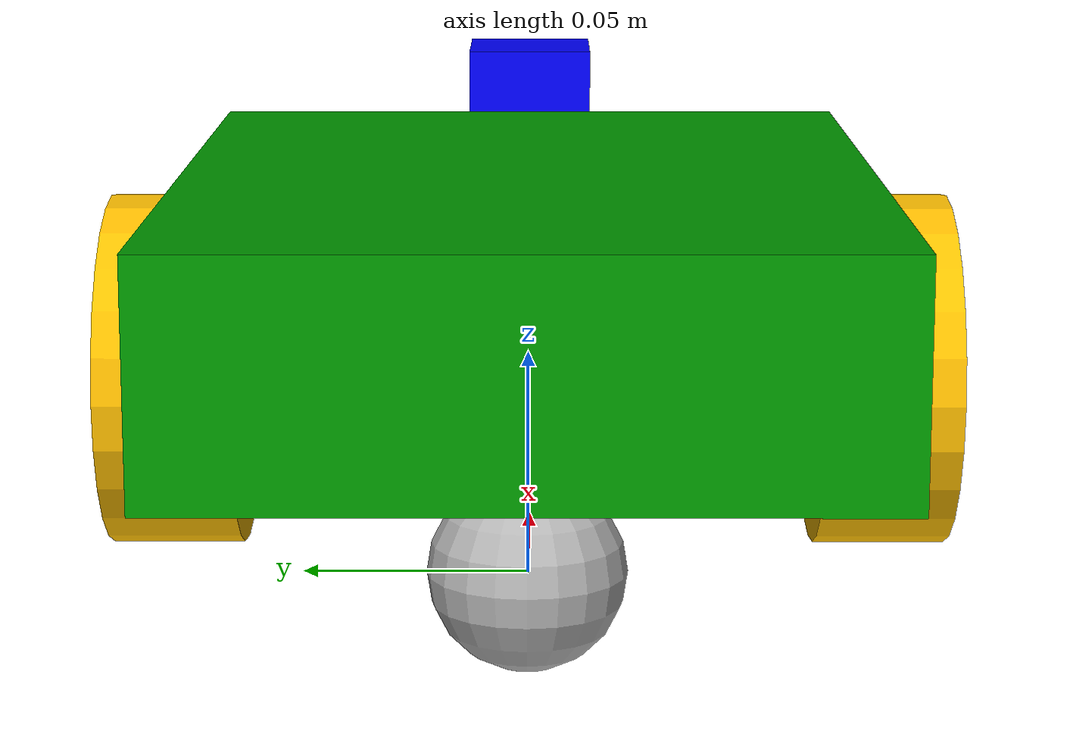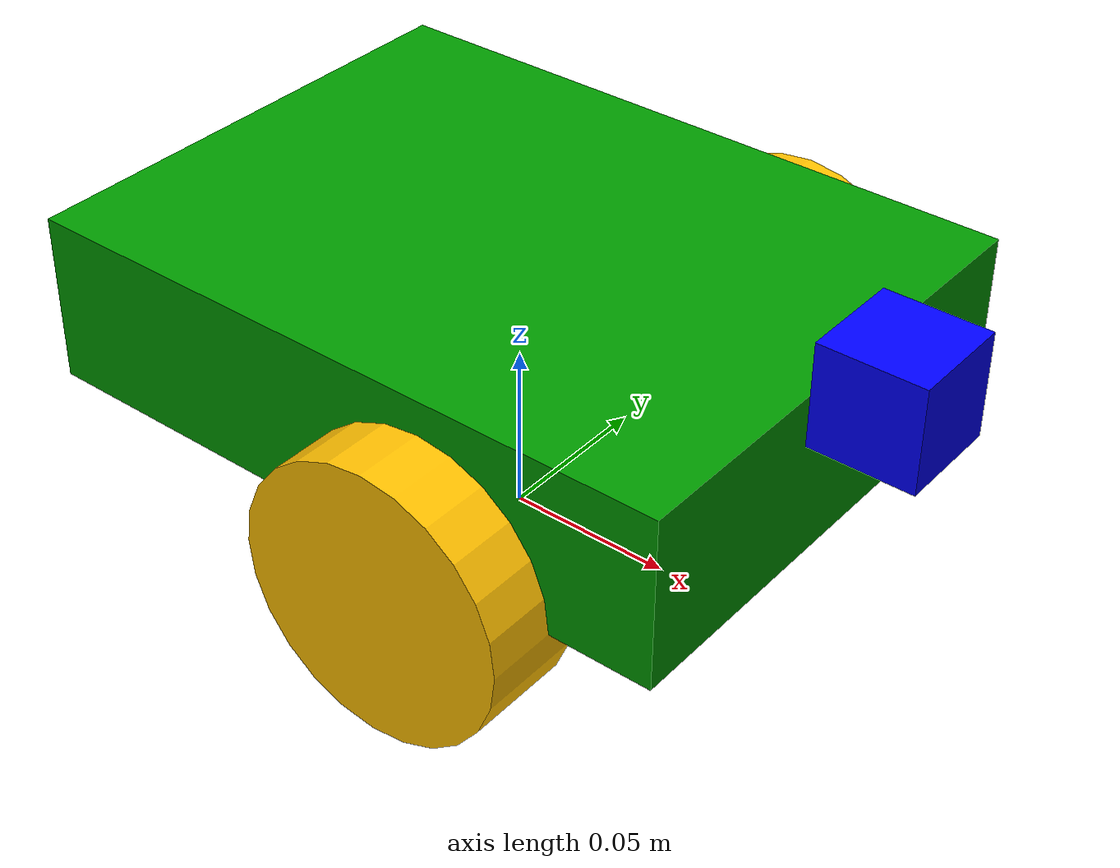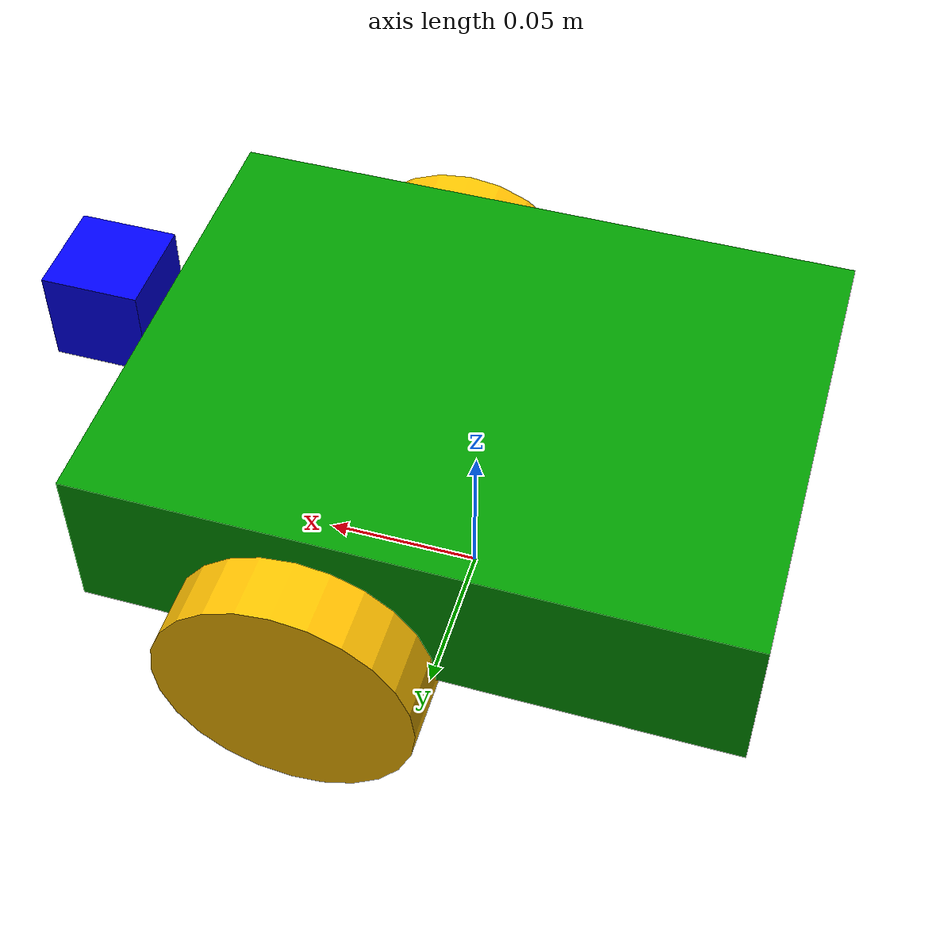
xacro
<?xml version="1.0"?>
<robot name="my_robot" xmlns:xacro="http://www.ros.org/wiki/xacro">

    <xacro:property name="base_length" value="0.2" />
    <xacro:property name="base_width" value="0.15" />
    <xacro:property name="base_height" value="0.05" />

    <xacro:property name="wheel_radius" value="0.04" />
    <xacro:property name="wheel_length" value="0.03" />
    <xacro:property name="track_width" value="0.16" />

    <xacro:property name="PI" value="3.141592653589793" />

    <xacro:property name="camera_side_length" value="0.03" />

    <xacro:include filename="$(find my_robot_description)/urdf/common_properties.xacro" />
    <xacro:include filename="$(find my_robot_description)/urdf/gazebo_plugins.xacro" />

    <material name="green">
        <color rgba="0 0.6 0 1" />
    </material>green

    <material name="gray">
        <color rgba="0.7 0.7 0.7 1" />
    </material>

    <material name="yellow">
        <color rgba="1.0 0.75 0 1" />
    </material>

    <material name="blue">
        <color rgba="0 0 1 1" />
    </material>

    <link name="camera_link">

        <xacro:box_inertia
            m="0.01"
            x="${camera_side_length}"
            y="${camera_side_length}"
            z="${camera_side_length}"
            o_xyz="${camera_side_length / 2} 0 0"
            o_rpy="0 0 0" />

        <visual>
            <geometry>
                <box
                    size="${camera_side_length} ${camera_side_length} ${camera_side_length}" />
            </geometry>

            <origin
                xyz="${camera_side_length / 2} 0 0"
                rpy="0 0 0" />

            <material name="blue" />
        </visual>

    </link>

    <link name="base_link">

        <xacro:box_inertia
            m="5.0"
            x="${base_length}"
            y="${base_width}"
            z="${base_height}"
            o_xyz="0 0 ${base_height / 2.0}"
            o_rpy="0 0 0" />

        <collision>
            <origin
                xyz="0 0 ${base_height / 2.0}"
                rpy="0 0 0" />

            <geometry>
                <box
                    size="${base_length} ${base_width} ${base_height}" />
            </geometry>
        </collision>

        <visual>
            <geometry>
                <box
                    size="${base_length} ${base_width} ${base_height}" />
            </geometry>

            <origin
                xyz="0 0 ${base_height / 2.0}"
                rpy="0 0 0" />
            <material name="green" />
        </visual>

    </link>

    <link name="left_wheel_link">

        <visual>

            <origin
                xyz="0 0 0"
                rpy="${PI / 2} 0 0" />

            <geometry>
                <cylinder
                    radius="${wheel_radius}"
                    length="${wheel_length}" />
            </geometry>

            <material name="yellow" />

        </visual>

        <collision>

            <origin
                xyz="0 0 0"
                rpy="${PI / 2} 0 0" />

            <geometry>
                <cylinder
                    radius="${wheel_radius}"
                    length="${wheel_length}" />
            </geometry>

        </collision>

        <xacro:cylinder_inertia
            m="1.0"
            r="${wheel_radius}"
            l="${wheel_length}"
            o_xyz="0 0 ${base_height / 2.0}"
            o_rpy="0 0 0"
             />

    </link>

    <link name="right_wheel_link">

        <visual>

            <origin
                xyz="0 0 0"
                rpy="${PI / 2} 0 0" />

            <geometry>
                <cylinder
                    radius="${wheel_radius}"
                    length="${wheel_length}" />
            </geometry>

            <material name="yellow" />

        </visual>

        <collision>

            <origin
                xyz="0 0 0"
                rpy="${PI / 2} 0 0" />

            <geometry>
                <cylinder
                    radius="${wheel_radius}"
                    length="${wheel_length}" />
            </geometry>

        </collision>

        <xacro:cylinder_inertia
            m="1.0"
            r="${wheel_radius}"
            l="${wheel_length}"
            o_xyz="0 0 ${base_height / 2.0}"
            o_rpy="0 0 0" />

    </link>

    <link name="caster_wheel_link">

        <xacro:sphere_inertia
            m="0.5"
            r="${wheel_radius / 2.0}"
            o_xyz="0 0 0"
            o_rpy="0 0 0" />

        <collision>

            <origin
                xyz="0 0 0"
                rpy="0 0 0" />

            <geometry>
                <sphere
                    radius="${wheel_radius / 2.0}" />
            </geometry>

        </collision>

        <visual>

            <origin
                xyz="0 0 0"
                rpy="0 0 0" />

            <geometry>
                <sphere
                    radius="${wheel_radius / 2.0}" />
            </geometry>

            <material name="gray" />

        </visual>

    </link>

    <link name="base_footprint" />

    <joint name="base_camera_joint" type="fixed">

        <parent link="base_link" />
        <child link="camera_link" />

        <origin
            xyz="${base_length / 2} 0 ${base_height}"
            rpy="0 0 0" />

    </joint>

    <joint name="left_wheel_joint" type="continuous">

        <parent link="base_link" />
        <child link="left_wheel_link" />

        <origin
            xyz="0.03 ${track_width / 2} 0"
            rpy="0 0 0" />

        <axis xyz="0 1 0" />

    </joint>

    <joint name="right_wheel_joint" type="continuous">

        <parent link="base_link" />
        <child link="right_wheel_link" />

        <origin
            xyz="0.03 ${-track_width / 2} 0"
            rpy="0 0 0" />

        <axis xyz="0 1 0" />

    </joint>

    <joint name="base_caster_wheel_joint" type="fixed">

        <parent link="base_link" />
        <child link="caster_wheel_link" />

        <origin
            xyz="${-base_length / 3.0} 0 ${-wheel_radius / 2.0}"
            rpy="0 0 0" />

    </joint>

    <joint name="base_joint" type="fixed">

        <parent link="base_footprint" />
        <child link="base_link" />

        <origin
            xyz="0 0 ${wheel_radius}"
            rpy="0 0 0" />

    </joint>

    <gazebo>

        <plugin
            filename="gz-sim-pose-publisher-system"
            name="gz::sim::systems::PosePublisher">

            <publish_model_pose>true</publish_model_pose>
            <publish_link_pose>false</publish_link_pose>
            <publish_sensor_pose>false</publish_sensor_pose>
            <publish_collision_pose>false</publish_collision_pose>
            <publish_visual_pose>false</publish_visual_pose>

            <update_frequency>50</update_frequency>

            <use_pose_vector_msg>false</use_pose_vector_msg>

        </plugin>

    </gazebo>

</robot>
